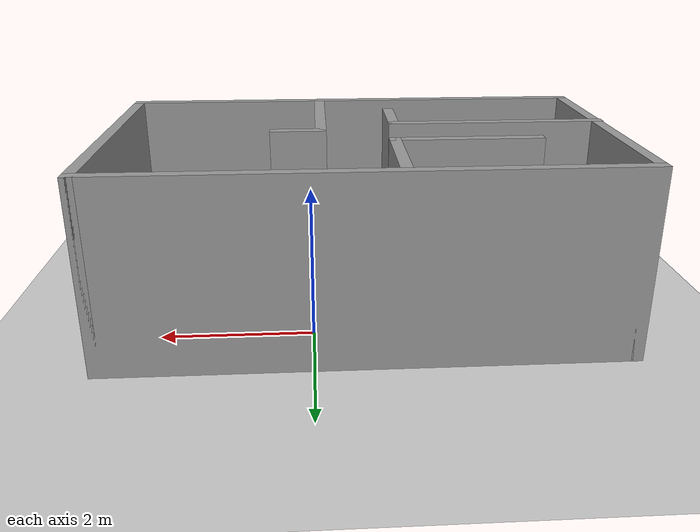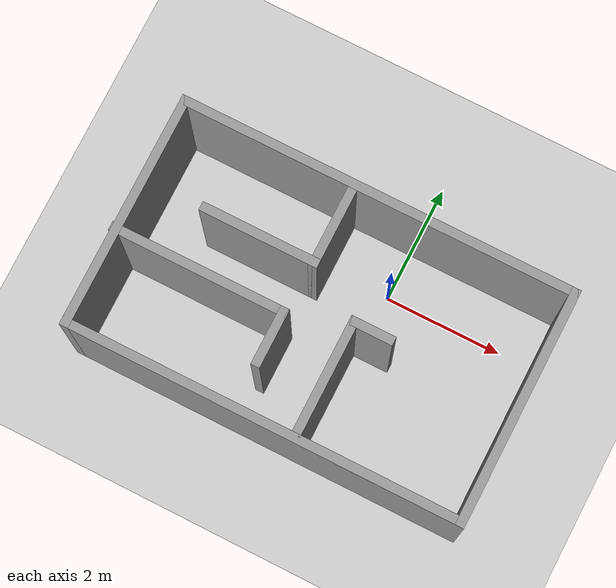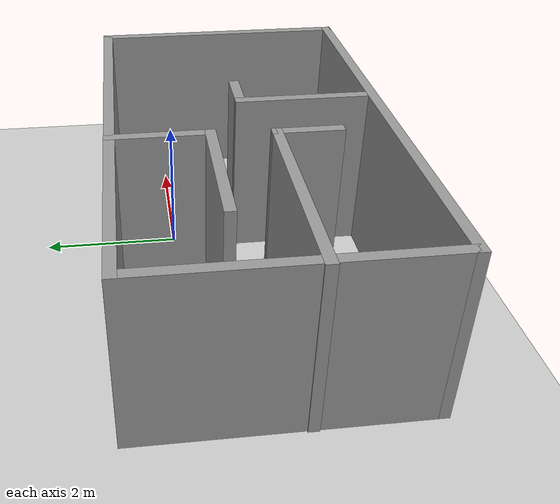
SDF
<sdf version="1.7">
 <world name="default">
  <light name="sun" type="directional">
   <pose>0 0 10 0 -0 0</pose>
   <diffuse>0.8 0.8 0.8 1</diffuse>
   <specular>0.2 0.2 0.2 1</specular>
   <attenuation>
    <range>1000</range>
    <constant>0.9</constant>
    <linear>0.01</linear>
    <quadratic>0.001</quadratic>
   </attenuation>
   <direction>-0.5 0.1 -0.9</direction>
   <spot><inner_angle>0</inner_angle><outer_angle>0</outer_angle><falloff>0</falloff></spot>
  </light>
  <model name="ground_plane">
   <static>1</static>
   <link name="link">
    <collision name="collision">
     <geometry><plane><normal>0 0 1</normal><size>100 100</size></plane></geometry>
     <surface><friction><ode><mu>100</mu><mu2>50</mu2></ode></friction></surface>
    </collision>
    <visual name="visual">
     <cast_shadows>0</cast_shadows>
     <geometry><plane><normal>0 0 1</normal><size>100 100</size></plane></geometry>
     <material>
      <script><uri>file://media/materials/scripts/gazebo.material</uri><name>Gazebo/Grey</name></script>
     </material>
    </visual>
   </link>
  </model>
  <gravity>0 0 -9.8</gravity>
  <magnetic_field>6e-06 2.3e-05 -4.2e-05</magnetic_field>
  <atmosphere type="adiabatic"/>
  <physics type="ode">
   <max_step_size>0.001</max_step_size>
   <real_time_factor>1</real_time_factor>
   <real_time_update_rate>1000</real_time_update_rate>
  </physics>
  <scene><ambient>0.4 0.4 0.4 1</ambient><background>0.7 0.7 0.7 1</background><shadows>1</shadows></scene>
  <audio><device>default</device></audio>
  <spherical_coordinates>
   <surface_model>EARTH_WGS84</surface_model>
   <latitude_deg>0</latitude_deg>
   <longitude_deg>0</longitude_deg>
   <elevation>0</elevation>
   <heading_deg>0</heading_deg>
  </spherical_coordinates>
  <model name="room">
   <pose>-0.692205 -0.53208 0 0 -0 0</pose>
   <link name="Wall_11">
    <collision name="Wall_11_Collision">
     <geometry><box><size>3 0.15 2.5</size></box></geometry>
     <pose>0 0 1.25 0 -0 0</pose>
    </collision>
    <visual name="Wall_11_Visual">
     <pose>0 0 1.25 0 -0 0</pose>
     <geometry><box><size>3 0.15 2.5</size></box></geometry>
     <material>
      <script><uri>file://media/materials/scripts/gazebo.material</uri><name>Gazebo/Grey</name></script>
      <ambient>1 1 1 1</ambient>
     </material>
     <meta><layer>0</layer></meta>
    </visual>
    <pose>-1.885 -0.8275 0 0 -0 0</pose>
   </link>
   <link name="Wall_12">
    <collision name="Wall_12_Collision">
     <geometry><box><size>1 0.15 2.5</size></box></geometry>
     <pose>0 0 1.25 0 -0 0</pose>
    </collision>
    <visual name="Wall_12_Visual">
     <pose>0 0 1.25 0 -0 0</pose>
     <geometry><box><size>1 0.15 2.5</size></box></geometry>
     <material>
      <script><uri>file://media/materials/scripts/gazebo.material</uri><name>Gazebo/Grey</name></script>
      <ambient>1 1 1 1</ambient>
     </material>
     <meta><layer>0</layer></meta>
    </visual>
    <pose>-0.46 -1.2525 0 0 -0 -1.5708</pose>
   </link>
   <link name="Wall_14">
    <collision name="Wall_14_Collision">
     <geometry><box><size>2 0.15 2.5</size></box></geometry>
     <pose>0 0 1.25 0 -0 0</pose>
    </collision>
    <visual name="Wall_14_Visual">
     <pose>0 0 1.25 0 -0 0</pose>
     <geometry><box><size>2 0.15 2.5</size></box></geometry>
     <material>
      <script><uri>file://media/materials/scripts/gazebo.material</uri><name>Gazebo/Grey</name></script>
      <ambient>1 1 1 1</ambient>
     </material>
     <meta><layer>0</layer></meta>
    </visual>
    <pose>0.55 -1.4025 0 0 -0 1.5708</pose>
   </link>
   <link name="Wall_15">
    <collision name="Wall_15_Collision">
     <geometry><box><size>0.75 0.15 2.5</size></box></geometry>
     <pose>0 0 1.25 0 -0 0</pose>
    </collision>
    <visual name="Wall_15_Visual">
     <pose>0 0 1.25 0 -0 0</pose>
     <geometry><box><size>0.75 0.15 2.5</size></box></geometry>
     <material>
      <script><uri>file://media/materials/scripts/gazebo.material</uri><name>Gazebo/Grey</name></script>
      <ambient>1 1 1 1</ambient>
     </material>
     <meta><layer>0</layer></meta>
    </visual>
    <pose>0.85 -0.4775 0 0 -0 0</pose>
   </link>
   <link name="Wall_2">
    <collision name="Wall_2_Collision">
     <geometry><box><size>6.75 0.15 2.5</size></box></geometry>
     <pose>0 0 1.25 0 -0 0</pose>
    </collision>
    <visual name="Wall_2_Visual">
     <pose>0 0 1.25 0 -0 0</pose>
     <geometry><box><size>6.75 0.15 2.5</size></box></geometry>
     <material>
      <script><uri>file://media/materials/scripts/gazebo.material</uri><name>Gazebo/Grey</name></script>
      <ambient>1 1 1 1</ambient>
     </material>
     <meta><layer>0</layer></meta>
    </visual>
    <pose>0.01 1.4125 0 0 -0 0</pose>
   </link>
   <link name="Wall_3">
    <collision name="Wall_3_Collision">
     <geometry><box><size>4 0.15 2.5</size></box></geometry>
     <pose>0 0 1.25 0 -0 0</pose>
    </collision>
    <visual name="Wall_3_Visual">
     <pose>0 0 1.25 0 -0 0</pose>
     <geometry><box><size>4 0.15 2.5</size></box></geometry>
     <material>
      <script><uri>file://media/materials/scripts/gazebo.material</uri><name>Gazebo/Grey</name></script>
      <ambient>1 1 1 1</ambient>
     </material>
     <meta><layer>0</layer></meta>
    </visual>
    <pose>3.31 -0.5125 0 0 -0 -1.5708</pose>
   </link>
   <link name="Wall_4">
    <collision name="Wall_4_Collision">
     <geometry><box><size>6.75 0.15 2.5</size></box></geometry>
     <pose>0 0 1.25 0 -0 0</pose>
    </collision>
    <visual name="Wall_4_Visual">
     <pose>0 0 1.25 0 -0 0</pose>
     <geometry><box><size>6.75 0.15 2.5</size></box></geometry>
     <material>
      <script><uri>file://media/materials/scripts/gazebo.material</uri><name>Gazebo/Grey</name></script>
      <ambient>1 1 1 1</ambient>
     </material>
     <meta><layer>0</layer></meta>
    </visual>
    <pose>0.01 -2.4375 0 0 -0 3.14159</pose>
   </link>
   <link name="Wall_5">
    <collision name="Wall_5_Collision">
     <geometry><box><size>4 0.15 2.5</size></box></geometry>
     <pose>0 0 1.25 0 -0 0</pose>
    </collision>
    <visual name="Wall_5_Visual">
     <pose>0 0 1.25 0 -0 0</pose>
     <geometry><box><size>4 0.15 2.5</size></box></geometry>
     <material>
      <script><uri>file://media/materials/scripts/gazebo.material</uri><name>Gazebo/Grey</name></script>
      <ambient>1 1 1 1</ambient>
     </material>
     <meta><layer>0</layer></meta>
    </visual>
    <pose>-3.29 -0.5125 0 0 -0 1.5708</pose>
   </link>
   <link name="Wall_7">
    <collision name="Wall_7_Collision">
     <geometry><box><size>2 0.15 2.5</size></box></geometry>
     <pose>0 0 1.25 0 -0 0</pose>
    </collision>
    <visual name="Wall_7_Visual">
     <pose>0 0 1.25 0 -0 0</pose>
     <geometry><box><size>2 0.15 2.5</size></box></geometry>
     <material>
      <script><uri>file://media/materials/scripts/gazebo.material</uri><name>Gazebo/Grey</name></script>
      <ambient>1 1 1 1</ambient>
     </material>
     <meta><layer>0</layer></meta>
    </visual>
    <pose>-1.315 0.0625 0 0 -0 0</pose>
   </link>
   <link name="Wall_8">
    <collision name="Wall_8_Collision">
     <geometry><box><size>1.5 0.15 2.5</size></box></geometry>
     <pose>0 0 1.25 0 -0 0</pose>
    </collision>
    <visual name="Wall_8_Visual">
     <pose>0 0 1.25 0 -0 0</pose>
     <geometry><box><size>1.5 0.15 2.5</size></box></geometry>
     <material>
      <script><uri>file://media/materials/scripts/gazebo.material</uri><name>Gazebo/Grey</name></script>
      <ambient>1 1 1 1</ambient>
     </material>
     <meta><layer>0</layer></meta>
    </visual>
    <pose>-0.39 0.7375 0 0 -0 1.5708</pose>
   </link>
   <static>1</static>
  </model>
 </world>
</sdf>
